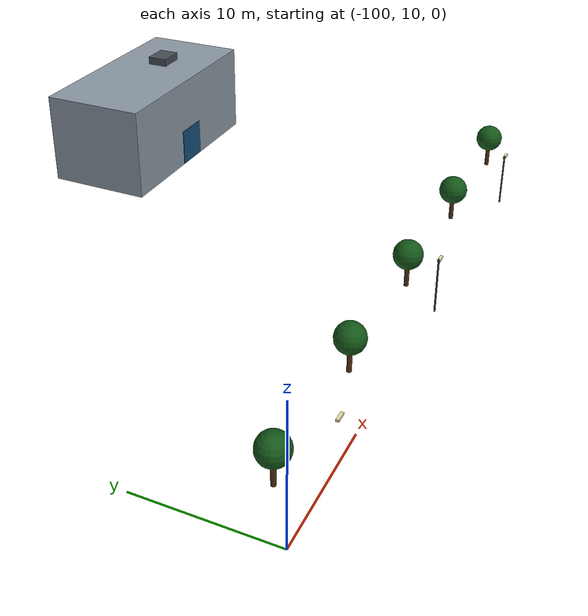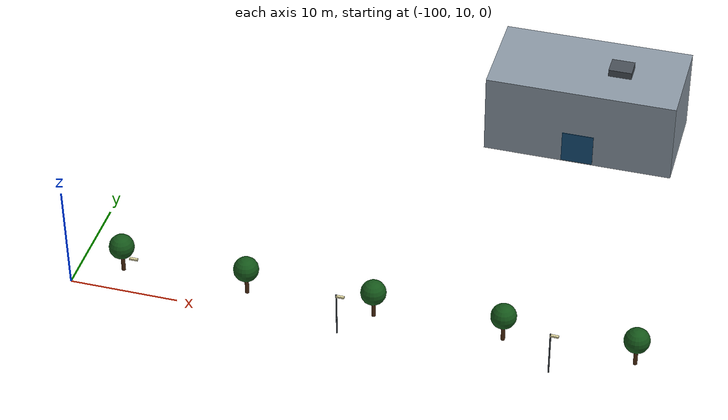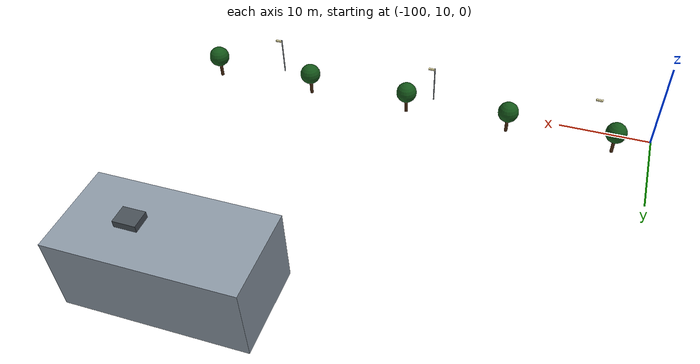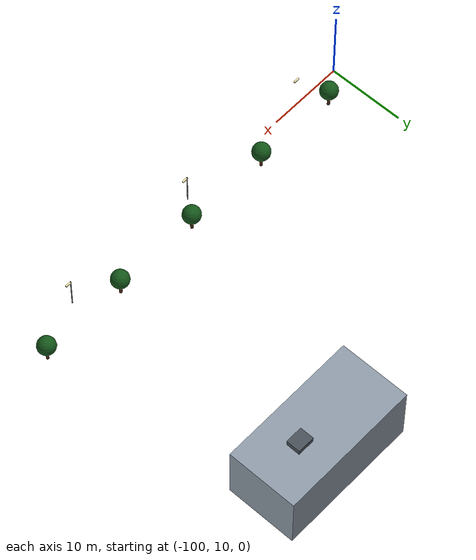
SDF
<sdf version="1.9">
 <world name="sanitation_campus_large">
  <model name="building_north_0">
   <static>true</static>
   <pose>-60.0 43.0 4.0 0 0 0</pose>
   <link name="link">
    <collision name="collision"><geometry><box><size>18.0 9.0 8.0</size></box></geometry></collision>
    <visual name="visual">
     <geometry><box><size>18.0 9.0 8.0</size></box></geometry>
     <material>
      <ambient>0.55 0.60 0.65 1</ambient>
      <diffuse>0.55 0.60 0.65 1</diffuse>
      <specular>0.04 0.04 0.04 1</specular>
     </material>
    </visual>
   </link>
  </model>
  <model name="glass_entry_north_0">
   <static>true</static>
   <pose>-60.0 38.49 1.7 0 0 0</pose>
   <link name="link">
    <visual name="visual">
     <geometry><box><size>3.0 0.08 3.2</size></box></geometry>
     <material>
      <ambient>0.08 0.31 0.48 1</ambient>
      <diffuse>0.08 0.31 0.48 1</diffuse>
      <specular>0.04 0.04 0.04 1</specular>
     </material>
    </visual>
   </link>
  </model>
  <model name="roof_unit_north_0">
   <static>true</static>
   <pose>-57.0 43.0 8.35 0 0 0</pose>
   <link name="link">
    <collision name="collision"><geometry><box><size>2.2 1.8 0.7</size></box></geometry></collision>
    <visual name="visual">
     <geometry><box><size>2.2 1.8 0.7</size></box></geometry>
     <material>
      <ambient>0.28 0.31 0.34 1</ambient>
      <diffuse>0.28 0.31 0.34 1</diffuse>
      <specular>0.04 0.04 0.04 1</specular>
     </material>
    </visual>
   </link>
  </model>
  <model name="tree_00">
   <static>true</static>
   <pose>-96.0 12.7 0 0 0 0</pose>
   <link name="link">
    <collision name="trunk_collision">
     <geometry><cylinder><radius>0.18</radius><length>2.2</length></cylinder></geometry>
     <pose>0 0 1.1 0 0 0</pose>
    </collision>
    <visual name="trunk">
     <pose>0 0 1.1 0 0 0</pose>
     <geometry><cylinder><radius>0.18</radius><length>2.2</length></cylinder></geometry>
     <material>
      <ambient>0.30 0.17 0.07 1</ambient>
      <diffuse>0.30 0.17 0.07 1</diffuse>
      <specular>0.04 0.04 0.04 1</specular>
     </material>
    </visual>
    <visual name="crown">
     <pose>0 0 2.7 0 0 0</pose>
     <geometry><sphere><radius>1.15</radius></sphere></geometry>
     <material>
      <ambient>0.08 0.34 0.10 1</ambient>
      <diffuse>0.08 0.34 0.10 1</diffuse>
      <specular>0.04 0.04 0.04 1</specular>
     </material>
    </visual>
   </link>
  </model>
  <model name="tree_02">
   <static>true</static>
   <pose>-84.36363636363636 12.7 0 0 0 0</pose>
   <link name="link">
    <collision name="trunk_collision">
     <geometry><cylinder><radius>0.18</radius><length>2.2</length></cylinder></geometry>
     <pose>0 0 1.1 0 0 0</pose>
    </collision>
    <visual name="trunk">
     <pose>0 0 1.1 0 0 0</pose>
     <geometry><cylinder><radius>0.18</radius><length>2.2</length></cylinder></geometry>
     <material>
      <ambient>0.30 0.17 0.07 1</ambient>
      <diffuse>0.30 0.17 0.07 1</diffuse>
      <specular>0.04 0.04 0.04 1</specular>
     </material>
    </visual>
    <visual name="crown">
     <pose>0 0 2.7 0 0 0</pose>
     <geometry><sphere><radius>1.15</radius></sphere></geometry>
     <material>
      <ambient>0.08 0.34 0.10 1</ambient>
      <diffuse>0.08 0.34 0.10 1</diffuse>
      <specular>0.04 0.04 0.04 1</specular>
     </material>
    </visual>
   </link>
  </model>
  <model name="tree_04">
   <static>true</static>
   <pose>-72.72727272727272 12.7 0 0 0 0</pose>
   <link name="link">
    <collision name="trunk_collision">
     <geometry><cylinder><radius>0.18</radius><length>2.2</length></cylinder></geometry>
     <pose>0 0 1.1 0 0 0</pose>
    </collision>
    <visual name="trunk">
     <pose>0 0 1.1 0 0 0</pose>
     <geometry><cylinder><radius>0.18</radius><length>2.2</length></cylinder></geometry>
     <material>
      <ambient>0.30 0.17 0.07 1</ambient>
      <diffuse>0.30 0.17 0.07 1</diffuse>
      <specular>0.04 0.04 0.04 1</specular>
     </material>
    </visual>
    <visual name="crown">
     <pose>0 0 2.7 0 0 0</pose>
     <geometry><sphere><radius>1.15</radius></sphere></geometry>
     <material>
      <ambient>0.08 0.34 0.10 1</ambient>
      <diffuse>0.08 0.34 0.10 1</diffuse>
      <specular>0.04 0.04 0.04 1</specular>
     </material>
    </visual>
   </link>
  </model>
  <model name="tree_06">
   <static>true</static>
   <pose>-61.09090909090909 12.7 0 0 0 0</pose>
   <link name="link">
    <collision name="trunk_collision">
     <geometry><cylinder><radius>0.18</radius><length>2.2</length></cylinder></geometry>
     <pose>0 0 1.1 0 0 0</pose>
    </collision>
    <visual name="trunk">
     <pose>0 0 1.1 0 0 0</pose>
     <geometry><cylinder><radius>0.18</radius><length>2.2</length></cylinder></geometry>
     <material>
      <ambient>0.30 0.17 0.07 1</ambient>
      <diffuse>0.30 0.17 0.07 1</diffuse>
      <specular>0.04 0.04 0.04 1</specular>
     </material>
    </visual>
    <visual name="crown">
     <pose>0 0 2.7 0 0 0</pose>
     <geometry><sphere><radius>1.15</radius></sphere></geometry>
     <material>
      <ambient>0.08 0.34 0.10 1</ambient>
      <diffuse>0.08 0.34 0.10 1</diffuse>
      <specular>0.04 0.04 0.04 1</specular>
     </material>
    </visual>
   </link>
  </model>
  <model name="tree_08">
   <static>true</static>
   <pose>-49.45454545454545 12.7 0 0 0 0</pose>
   <link name="link">
    <collision name="trunk_collision">
     <geometry><cylinder><radius>0.18</radius><length>2.2</length></cylinder></geometry>
     <pose>0 0 1.1 0 0 0</pose>
    </collision>
    <visual name="trunk">
     <pose>0 0 1.1 0 0 0</pose>
     <geometry><cylinder><radius>0.18</radius><length>2.2</length></cylinder></geometry>
     <material>
      <ambient>0.30 0.17 0.07 1</ambient>
      <diffuse>0.30 0.17 0.07 1</diffuse>
      <specular>0.04 0.04 0.04 1</specular>
     </material>
    </visual>
    <visual name="crown">
     <pose>0 0 2.7 0 0 0</pose>
     <geometry><sphere><radius>1.15</radius></sphere></geometry>
     <material>
      <ambient>0.08 0.34 0.10 1</ambient>
      <diffuse>0.08 0.34 0.10 1</diffuse>
      <specular>0.04 0.04 0.04 1</specular>
     </material>
    </visual>
   </link>
  </model>
  <model name="lamp_head_00">
   <static>true</static>
   <pose>-93.65 9.7 4.25 0 0 0</pose>
   <link name="link">
    <visual name="visual">
     <geometry><box><size>0.75 0.22 0.16</size></box></geometry>
     <material>
      <ambient>0.92 0.88 0.66 1</ambient>
      <diffuse>0.92 0.88 0.66 1</diffuse>
      <specular>0.04 0.04 0.04 1</specular>
     </material>
    </visual>
   </link>
  </model>
  <model name="lamp_post_01">
   <static>true</static>
   <pose>-75.2 9.7 2.2 0 0 0</pose>
   <link name="link">
    <collision name="collision">
     <geometry><cylinder><radius>0.07</radius><length>4.4</length></cylinder></geometry>
    </collision>
    <visual name="visual">
     <geometry><cylinder><radius>0.07</radius><length>4.4</length></cylinder></geometry>
     <material>
      <ambient>0.12 0.14 0.16 1</ambient>
      <diffuse>0.12 0.14 0.16 1</diffuse>
      <specular>0.04 0.04 0.04 1</specular>
     </material>
    </visual>
   </link>
  </model>
  <model name="lamp_head_01">
   <static>true</static>
   <pose>-74.85000000000001 9.7 4.25 0 0 0</pose>
   <link name="link">
    <visual name="visual">
     <geometry><box><size>0.75 0.22 0.16</size></box></geometry>
     <material>
      <ambient>0.92 0.88 0.66 1</ambient>
      <diffuse>0.92 0.88 0.66 1</diffuse>
      <specular>0.04 0.04 0.04 1</specular>
     </material>
    </visual>
   </link>
  </model>
  <model name="lamp_post_02">
   <static>true</static>
   <pose>-56.4 9.7 2.2 0 0 0</pose>
   <link name="link">
    <collision name="collision">
     <geometry><cylinder><radius>0.07</radius><length>4.4</length></cylinder></geometry>
    </collision>
    <visual name="visual">
     <geometry><cylinder><radius>0.07</radius><length>4.4</length></cylinder></geometry>
     <material>
      <ambient>0.12 0.14 0.16 1</ambient>
      <diffuse>0.12 0.14 0.16 1</diffuse>
      <specular>0.04 0.04 0.04 1</specular>
     </material>
    </visual>
   </link>
  </model>
  <model name="lamp_head_02">
   <static>true</static>
   <pose>-56.05 9.7 4.25 0 0 0</pose>
   <link name="link">
    <visual name="visual">
     <geometry><box><size>0.75 0.22 0.16</size></box></geometry>
     <material>
      <ambient>0.92 0.88 0.66 1</ambient>
      <diffuse>0.92 0.88 0.66 1</diffuse>
      <specular>0.04 0.04 0.04 1</specular>
     </material>
    </visual>
   </link>
  </model>
 </world>
</sdf>
